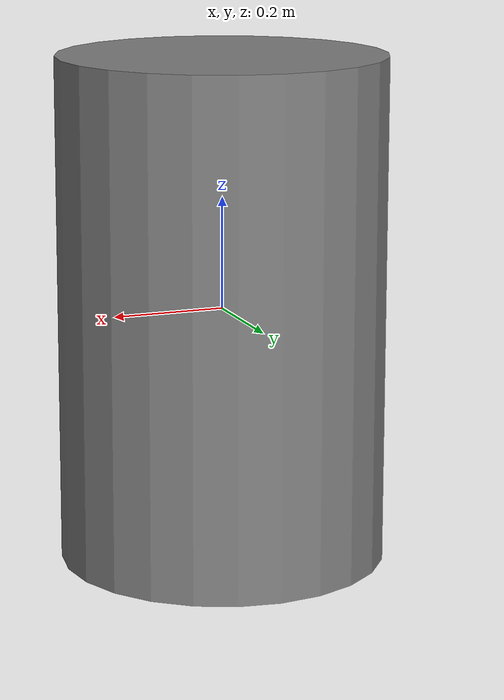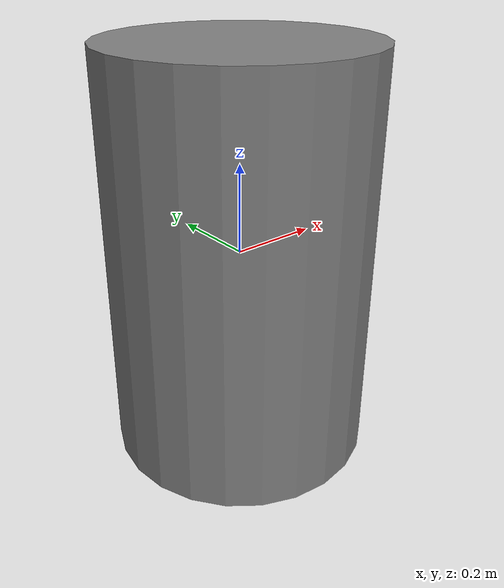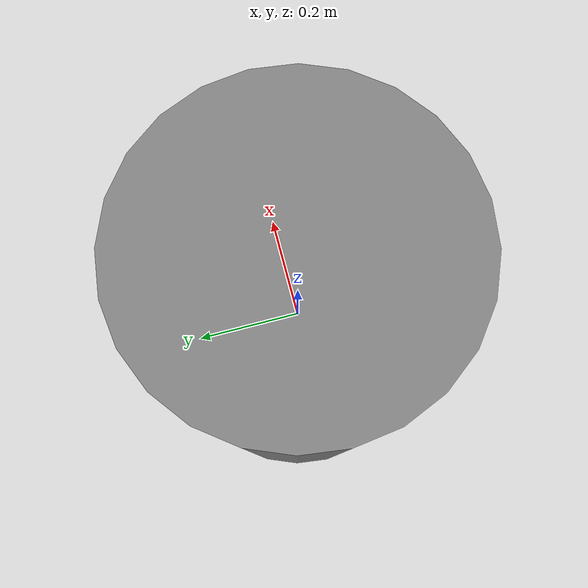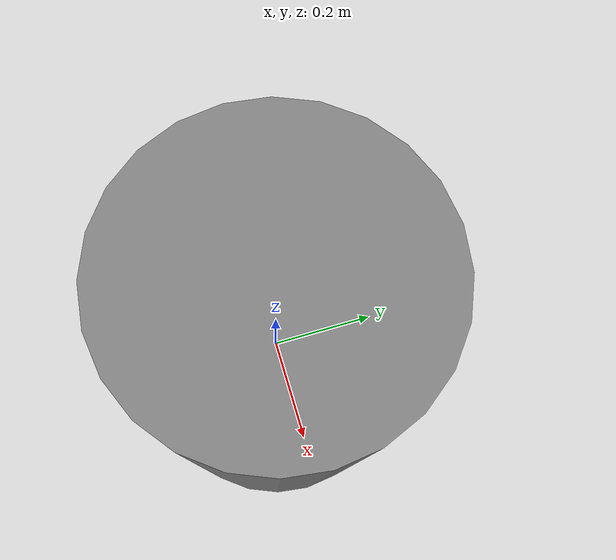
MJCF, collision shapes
<mujoco model="barrel">
  <!-- A plain cylindrical barrel (no handle). Visual = imported mesh, collision = single upright cylinder. -->
  <include file="barrel_defs.xml"/>

  <worldbody>
    <body name="barrel" pos="0 0 0">
      <joint name="barrel_joint" type="free"/>

      <inertial pos="0 0 0" mass="8.0" diaginertia="0.71 0.71 0.34"/>

      <!-- Visual: imported mesh. Its cylinder axis is along local Y, but MuJoCo is Z-up,
           so rotate 90 deg about X (Y -> Z) to stand the barrel upright. -->
      <geom name="barrel_visual" class="visual_barrel" type="mesh" mesh="barrel_mesh"
            quat="0.7071 0.7071 0 0" material="barrel_material"/>

      <geom name="barrel_collision" class="collision_barrel" type="cylinder"
            size="0.29 0.45" friction="0.6 0.3 0.0001"/>

      <!-- REQUIRED: every object placed in a Spot scene must define site_object;
           spot_components/sensor.xml references it (gripper-to-object, object axes, etc.). -->
      <site name="site_object" pos="0 0 0" size="0.01"/>
      <!-- Trace point for the task-specific reward/visualization. -->
      <site name="trace_barrel" pos="0 0 0" size="0.01"/>
    </body>
  </worldbody>
</mujoco>

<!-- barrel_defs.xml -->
<mujoco model="barrel_defs">
  <!-- Asset + style declarations for the barrel object. Mirrors the traffic_cone/yellow_chair _defs pattern. -->
  <default>
    <!-- Visual: rendered only, never collides (contype/conaffinity = 0). -->
    <default class="visual_barrel">
      <geom type="mesh" contype="0" conaffinity="0" group="2"/>
    </default>
    <!-- Collision: participates in contact, lives in group 3 (toggle in viser to debug). -->
    <default class="collision_barrel">
      <geom priority="6" group="3"/>
    </default>
  </default>

  <asset>
    <material name="barrel_material" rgba="0.15 0.35 0.75 1"/>
    <!-- Imported mesh is ~2.0 units tall (along its local Y) x ~1.30 across.
         scale=0.45 -> ~0.90 m tall, ~0.585 m diameter (a realistic oil drum). -->
    <mesh name="barrel_mesh" file="../../../meshes/barrel/model.obj" scale="0.45 0.45 0.45"/>
  </asset>
</mujoco>
